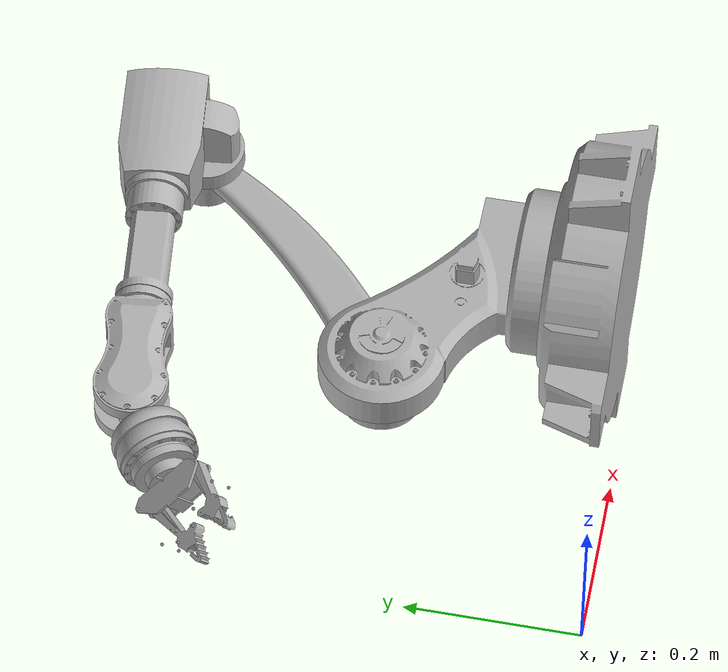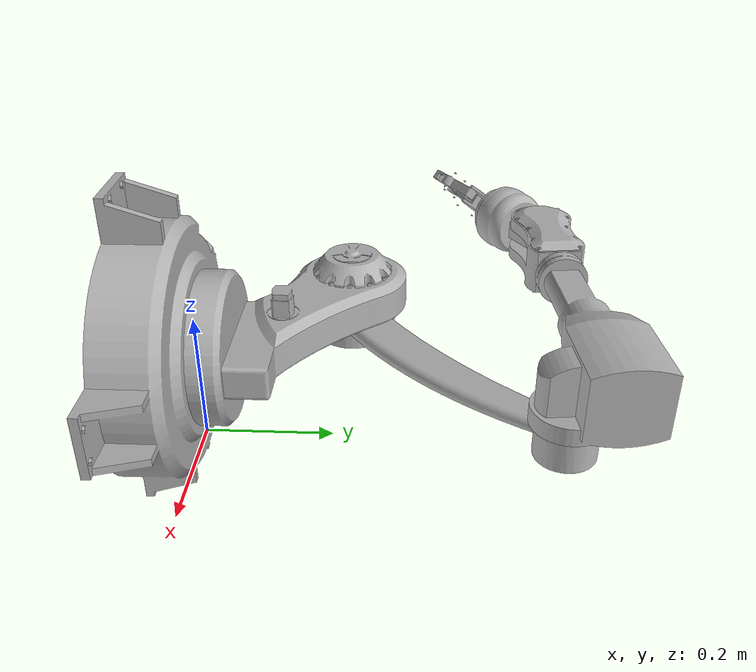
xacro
<?xml version="1.0" ?>
<robot name="newtrial" xmlns:xacro="http://www.ros.org/wiki/xacro">

<xacro:include filename="$(find newtrial_description)/urdf/materials.xacro" />
<xacro:include filename="$(find newtrial_description)/urdf/newtrial.trans" />
<xacro:include filename="$(find newtrial_description)/urdf/newtrial.gazebo" />
<link name="base_link">
  <inertial>
    <origin rpy="0 0 0" xyz="0.23410783994686515 0.008891736243104407 0.3229984698080418"/>
    <mass value="45.31428377967853"/>
    <inertia ixx="0.286619" ixy="-0.000299" ixz="-0.006278" iyy="0.523195" iyz="0.000324" izz="0.286478"/>
  </inertial>
  <visual>
    <origin rpy="0 0 0" xyz="0 0 0"/>
    <geometry>
      <mesh filename="package://newtrial_description/meshes/base_link.stl" scale="0.001 0.001 0.001"/>
    </geometry>
    <material name="silver"/>
  </visual>
  <collision>
    <origin rpy="0 0 0" xyz="0 0 0"/>
    <geometry>
      <mesh filename="package://newtrial_description/meshes/base_link.stl" scale="0.001 0.001 0.001"/>
    </geometry>
  </collision>
</link>

<link name="JAW_1_1">
  <inertial>
    <origin rpy="0 0 0" xyz="-0.05934653060928424 0.08495428160357854 0.0017824470420595984"/>
    <mass value="18.75878094663069"/>
    <inertia ixx="0.097417" ixy="0.074499" ixz="0.001405" iyy="0.132376" iyz="-0.001705" izz="0.194291"/>
  </inertial>
  <visual>
    <origin rpy="0 0 0" xyz="-0.232666 -0.054182 -0.324424"/>
    <geometry>
      <mesh filename="package://newtrial_description/meshes/JAW_1_1.stl" scale="0.001 0.001 0.001"/>
    </geometry>
    <material name="silver"/>
  </visual>
  <collision>
    <origin rpy="0 0 0" xyz="-0.232666 -0.054182 -0.324424"/>
    <geometry>
      <mesh filename="package://newtrial_description/meshes/JAW_1_1.stl" scale="0.001 0.001 0.001"/>
    </geometry>
  </collision>
</link>

<link name="JAW_2_1">
  <inertial>
    <origin rpy="0 0 0" xyz="-0.11719306446930884 0.07496766963144594 -0.02011833246683198"/>
    <mass value="6.328442247675211"/>
    <inertia ixx="0.03688" ixy="0.056178" ixz="-0.003462" iyy="0.100442" iyz="0.001735" izz="0.135075"/>
  </inertial>
  <visual>
    <origin rpy="0 0 0" xyz="-0.083506 -0.214336 -0.298922"/>
    <geometry>
      <mesh filename="package://newtrial_description/meshes/JAW_2_1.stl" scale="0.001 0.001 0.001"/>
    </geometry>
    <material name="silver"/>
  </visual>
  <collision>
    <origin rpy="0 0 0" xyz="-0.083506 -0.214336 -0.298922"/>
    <geometry>
      <mesh filename="package://newtrial_description/meshes/JAW_2_1.stl" scale="0.001 0.001 0.001"/>
    </geometry>
  </collision>
</link>

<link name="JAW_3_1">
  <inertial>
    <origin rpy="0 0 0" xyz="0.054284213702084055 0.018776325440456543 0.04840197190567891"/>
    <mass value="11.40386436403121"/>
    <inertia ixx="0.049704" ixy="-0.02259" ixz="-0.001915" iyy="0.029859" iyz="-0.001061" izz="0.067217"/>
  </inertial>
  <visual>
    <origin rpy="0 0 0" xyz="0.220427 -0.387536 -0.287686"/>
    <geometry>
      <mesh filename="package://newtrial_description/meshes/JAW_3_1.stl" scale="0.001 0.001 0.001"/>
    </geometry>
    <material name="silver"/>
  </visual>
  <collision>
    <origin rpy="0 0 0" xyz="0.220427 -0.387536 -0.287686"/>
    <geometry>
      <mesh filename="package://newtrial_description/meshes/JAW_3_1.stl" scale="0.001 0.001 0.001"/>
    </geometry>
  </collision>
</link>

<link name="JAW_4_1">
  <inertial>
    <origin rpy="0 0 0" xyz="0.03381921487349331 0.058095592134086216 0.0011072321904233573"/>
    <mass value="3.736976429844003"/>
    <inertia ixx="0.00754" ixy="-0.002537" ixz="6.7e-05" iyy="0.004588" iyz="-0.000171" izz="0.009441"/>
  </inertial>
  <visual>
    <origin rpy="0 0 0" xyz="0.060842 -0.578504 -0.341619"/>
    <geometry>
      <mesh filename="package://newtrial_description/meshes/JAW_4_1.stl" scale="0.001 0.001 0.001"/>
    </geometry>
    <material name="silver"/>
  </visual>
  <collision>
    <origin rpy="0 0 0" xyz="0.060842 -0.578504 -0.341619"/>
    <geometry>
      <mesh filename="package://newtrial_description/meshes/JAW_4_1.stl" scale="0.001 0.001 0.001"/>
    </geometry>
  </collision>
</link>

<link name="JAW_5_1">
  <inertial>
    <origin rpy="0 0 0" xyz="0.04233889498890879 0.036324896371280224 0.022412072114757986"/>
    <mass value="2.672375979830758"/>
    <inertia ixx="0.002539" ixy="-0.00034" ixz="-0.000209" iyy="0.0024" iyz="-0.000242" izz="0.002644"/>
  </inertial>
  <visual>
    <origin rpy="0 0 0" xyz="0.014078 -0.684157 -0.347263"/>
    <geometry>
      <mesh filename="package://newtrial_description/meshes/JAW_5_1.stl" scale="0.001 0.001 0.001"/>
    </geometry>
    <material name="silver"/>
  </visual>
  <collision>
    <origin rpy="0 0 0" xyz="0.014078 -0.684157 -0.347263"/>
    <geometry>
      <mesh filename="package://newtrial_description/meshes/JAW_5_1.stl" scale="0.001 0.001 0.001"/>
    </geometry>
  </collision>
</link>

<link name="JAW_6_1">
  <inertial>
    <origin rpy="0 0 0" xyz="0.008995567630886034 0.011620994445017852 0.007139576448178253"/>
    <mass value="0.600174321482272"/>
    <inertia ixx="0.000291" ixy="2.4e-05" ixz="-8e-06" iyy="0.000284" iyz="2.1e-05" izz="0.000292"/>
  </inertial>
  <visual>
    <origin rpy="0 0 0" xyz="-0.047695 -0.745344 -0.384951"/>
    <geometry>
      <mesh filename="package://newtrial_description/meshes/JAW_6_1.stl" scale="0.001 0.001 0.001"/>
    </geometry>
    <material name="silver"/>
  </visual>
  <collision>
    <origin rpy="0 0 0" xyz="-0.047695 -0.745344 -0.384951"/>
    <geometry>
      <mesh filename="package://newtrial_description/meshes/JAW_6_1.stl" scale="0.001 0.001 0.001"/>
    </geometry>
  </collision>
</link>

<link name="JAW_7__2__1">
  <inertial>
    <origin rpy="0 0 0" xyz="0.014702003765471636 0.02983252833634631 0.02035015108459265"/>
    <mass value="0.11899227461667589"/>
    <inertia ixx="5.1e-05" ixy="-2.5e-05" ixz="-1.6e-05" iyy="3.8e-05" iyz="-1.9e-05" izz="5.9e-05"/>
  </inertial>
  <visual>
    <origin rpy="0 0 0" xyz="-0.093311 -0.739826 -0.411728"/>
    <geometry>
      <mesh filename="package://newtrial_description/meshes/JAW_7__2__1.stl" scale="0.001 0.001 0.001"/>
    </geometry>
    <material name="silver"/>
  </visual>
  <collision>
    <origin rpy="0 0 0" xyz="-0.093311 -0.739826 -0.411728"/>
    <geometry>
      <mesh filename="package://newtrial_description/meshes/JAW_7__2__1.stl" scale="0.001 0.001 0.001"/>
    </geometry>
  </collision>
</link>

<link name="JAW_7_1">
  <inertial>
    <origin rpy="0 0 0" xyz="0.03731070053715123 0.014984089524093247 0.04169407779466605"/>
    <mass value="0.1195825938842833"/>
    <inertia ixx="4.1e-05" ixy="-2e-05" ixz="-2.6e-05" iyy="5.7e-05" iyz="-1.6e-05" izz="5e-05"/>
  </inertial>
  <visual>
    <origin rpy="0 0 0" xyz="-0.049875 -0.797153 -0.373146"/>
    <geometry>
      <mesh filename="package://newtrial_description/meshes/JAW_7_1.stl" scale="0.001 0.001 0.001"/>
    </geometry>
    <material name="silver"/>
  </visual>
  <collision>
    <origin rpy="0 0 0" xyz="-0.049875 -0.797153 -0.373146"/>
    <geometry>
      <mesh filename="package://newtrial_description/meshes/JAW_7_1.stl" scale="0.001 0.001 0.001"/>
    </geometry>
  </collision>
</link>

<joint name="Rev1" type="continuous">
  <origin rpy="0 0 0" xyz="0.232666 0.054182 0.324424"/>
  <parent link="base_link"/>
  <child link="JAW_1_1"/>
  <axis xyz="0.0 1.0 0.0"/>
</joint>

<joint name="Rev2" type="continuous">
  <origin rpy="0 0 0" xyz="-0.14916 0.160154 -0.025502"/>
  <parent link="JAW_1_1"/>
  <child link="JAW_2_1"/>
  <axis xyz="0.036944 -0.0 -0.999317"/>
</joint>

<joint name="Rev3" type="continuous">
  <origin rpy="0 0 0" xyz="-0.303933 0.1732 -0.011236"/>
  <parent link="JAW_2_1"/>
  <child link="JAW_3_1"/>
  <axis xyz="-0.036944 -0.0 0.999317"/>
</joint>

<joint name="Rev4" type="continuous">
  <origin rpy="0 0 0" xyz="0.159585 0.190968 0.053933"/>
  <parent link="JAW_3_1"/>
  <child link="JAW_4_1"/>
  <axis xyz="0.497379 0.867339 0.018387"/>
</joint>

<joint name="Rev5" type="continuous">
  <origin rpy="0 0 0" xyz="0.046764 0.105653 0.005644"/>
  <parent link="JAW_4_1"/>
  <child link="JAW_5_1"/>
  <axis xyz="0.834758 -0.47271 -0.282354"/>
</joint>

<joint name="Rev6" type="continuous">
  <origin rpy="0 0 0" xyz="0.061773 0.061187 0.037688"/>
  <parent link="JAW_5_1"/>
  <child link="JAW_6_1"/>
  <axis xyz="0.550586 0.711267 0.436983"/>
</joint>

<joint name="Rev7" type="continuous">
  <origin rpy="0 0 0" xyz="0.045616 -0.005518 0.026777"/>
  <parent link="JAW_6_1"/>
  <child link="JAW_7__2__1"/>
  <axis xyz="-0.64315 0.027715 0.765239"/>
</joint>

<joint name="Rev8" type="continuous">
  <origin rpy="0 0 0" xyz="0.00218 0.051809 -0.011805"/>
  <parent link="JAW_6_1"/>
  <child link="JAW_7_1"/>
  <axis xyz="-0.64315 0.027715 0.765239"/>
</joint>

</robot>

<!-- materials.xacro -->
<robot name="newtrial" xmlns:xacro="http://www.ros.org/wiki/xacro" >

<material name="silver">
  <color rgba="0.700 0.700 0.700 1.000"/>
</material>

</robot>

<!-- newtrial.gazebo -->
<robot name="newtrial" xmlns:xacro="http://www.ros.org/wiki/xacro" >

<xacro:property name="body_color" value="Gazebo/Silver" />

<gazebo>
  <plugin filename="libgazebo_ros_control.so" name="control"/>
</gazebo>
<gazebo reference="base_link">
  <material>${body_color}</material>
  <mu1>0.2</mu1>
  <mu2>0.2</mu2>
  <selfCollide>true</selfCollide>
  <gravity>true</gravity>
</gazebo>

<gazebo reference="JAW_1_1">
  <material>${body_color}</material>
  <mu1>0.2</mu1>
  <mu2>0.2</mu2>
  <selfCollide>true</selfCollide>
</gazebo>

<gazebo reference="JAW_2_1">
  <material>${body_color}</material>
  <mu1>0.2</mu1>
  <mu2>0.2</mu2>
  <selfCollide>true</selfCollide>
</gazebo>

<gazebo reference="JAW_3_1">
  <material>${body_color}</material>
  <mu1>0.2</mu1>
  <mu2>0.2</mu2>
  <selfCollide>true</selfCollide>
</gazebo>

<gazebo reference="JAW_4_1">
  <material>${body_color}</material>
  <mu1>0.2</mu1>
  <mu2>0.2</mu2>
  <selfCollide>true</selfCollide>
</gazebo>

<gazebo reference="JAW_5_1">
  <material>${body_color}</material>
  <mu1>0.2</mu1>
  <mu2>0.2</mu2>
  <selfCollide>true</selfCollide>
</gazebo>

<gazebo reference="JAW_6_1">
  <material>${body_color}</material>
  <mu1>0.2</mu1>
  <mu2>0.2</mu2>
  <selfCollide>true</selfCollide>
</gazebo>

<gazebo reference="JAW_7__2__1">
  <material>${body_color}</material>
  <mu1>0.2</mu1>
  <mu2>0.2</mu2>
  <selfCollide>true</selfCollide>
</gazebo>

<gazebo reference="JAW_7_1">
  <material>${body_color}</material>
  <mu1>0.2</mu1>
  <mu2>0.2</mu2>
  <selfCollide>true</selfCollide>
</gazebo>

</robot>
